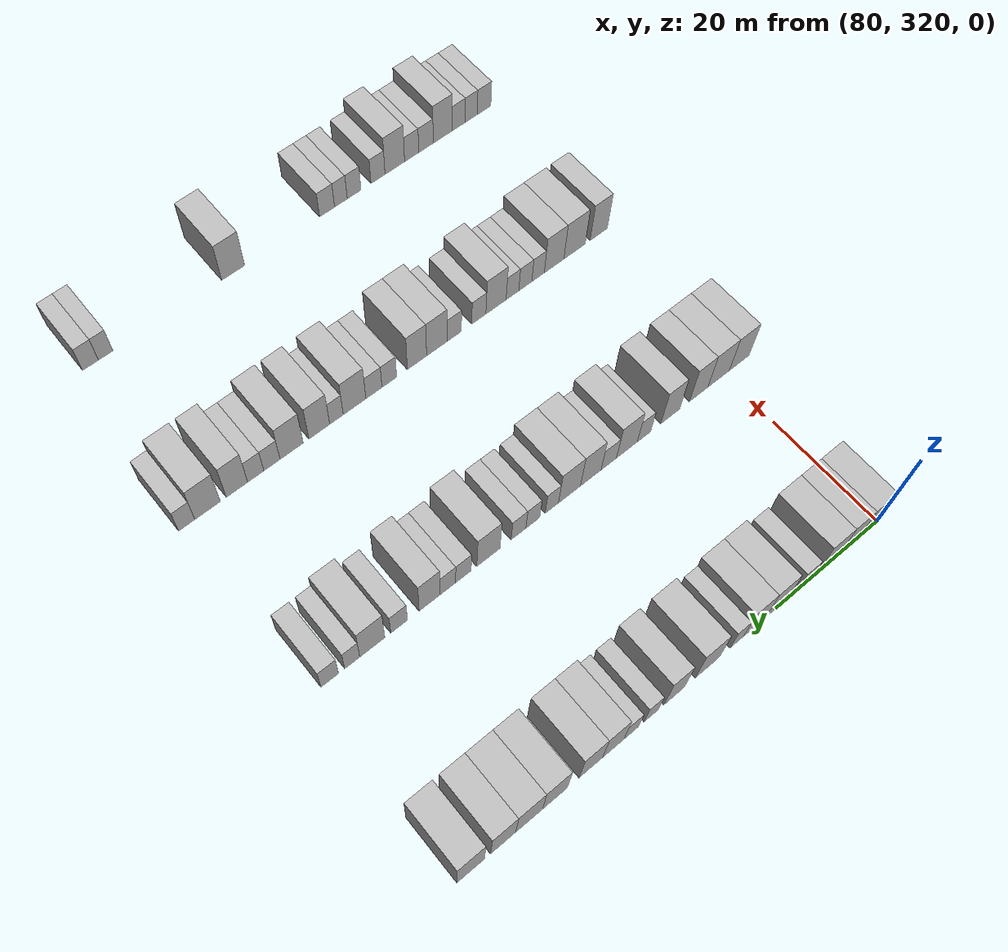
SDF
<sdf version="1.6">
 <world name="default">
  <model name="building_662">
   <static>1</static>
   <pose>85.0000 321.6373 0 0.000000 0.000000 0.000000</pose>
   <link name="link">
    <pose>0 0 4.50 0 0 0</pose>
    <collision name="collision"><geometry><box><size>10.0000 4.1727 9.0000</size></box></geometry></collision>
    <visual name="visual">
     <cast_shadows>0</cast_shadows>
     <geometry><box><size>10.0000 4.1727 9.0000</size></box></geometry>
     <material>
      <script>
       <uri>model://HANNAS_wall/materials/scripts</uri>
       <uri>model://HANNAS_wall/materials/textures</uri>
       <name>vrc/HANNAS_wall</name>
      </script>
     </material>
    </visual>
   </link>
  </model>
  <model name="building_663">
   <static>1</static>
   <pose>85.0000 325.6740 0 0.000000 0.000000 0.000000</pose>
   <link name="link">
    <pose>0 0 4.50 0 0 0</pose>
    <collision name="collision"><geometry><box><size>10.0000 3.9007 9.0000</size></box></geometry></collision>
    <visual name="visual">
     <cast_shadows>0</cast_shadows>
     <geometry><box><size>10.0000 3.9007 9.0000</size></box></geometry>
     <material>
      <script>
       <uri>model://HANNAS_wall/materials/scripts</uri>
       <uri>model://HANNAS_wall/materials/textures</uri>
       <name>vrc/HANNAS_wall</name>
      </script>
     </material>
    </visual>
   </link>
  </model>
  <model name="building_664">
   <static>1</static>
   <pose>85.0000 329.7854 0 0.000000 0.000000 0.000000</pose>
   <link name="link">
    <pose>0 0 4.50 0 0 0</pose>
    <collision name="collision"><geometry><box><size>10.0000 4.3222 9.0000</size></box></geometry></collision>
    <visual name="visual">
     <cast_shadows>0</cast_shadows>
     <geometry><box><size>10.0000 4.3222 9.0000</size></box></geometry>
     <material>
      <script>
       <uri>model://HANNAS_wall/materials/scripts</uri>
       <uri>model://HANNAS_wall/materials/textures</uri>
       <name>vrc/HANNAS_wall</name>
      </script>
     </material>
    </visual>
   </link>
  </model>
  <model name="building_665">
   <static>1</static>
   <pose>85.0000 334.3871 0 0.000000 0.000000 0.000000</pose>
   <link name="link">
    <pose>0 0 3.00 0 0 0</pose>
    <collision name="collision"><geometry><box><size>10.0000 2.8812 6.0000</size></box></geometry></collision>
    <visual name="visual">
     <cast_shadows>0</cast_shadows>
     <geometry><box><size>10.0000 2.8812 6.0000</size></box></geometry>
     <material>
      <script>
       <uri>model://HANNAS_wall/materials/scripts</uri>
       <uri>model://HANNAS_wall/materials/textures</uri>
       <name>vrc/HANNAS_wall</name>
      </script>
     </material>
    </visual>
   </link>
  </model>
  <model name="building_666">
   <static>1</static>
   <pose>85.0000 339.9158 0 0.000000 0.000000 0.000000</pose>
   <link name="link">
    <pose>0 0 4.50 0 0 0</pose>
    <collision name="collision"><geometry><box><size>10.0000 4.1763 9.0000</size></box></geometry></collision>
    <visual name="visual">
     <cast_shadows>0</cast_shadows>
     <geometry><box><size>10.0000 4.1763 9.0000</size></box></geometry>
     <material>
      <script>
       <uri>model://HANNAS_wall/materials/scripts</uri>
       <uri>model://HANNAS_wall/materials/textures</uri>
       <name>vrc/HANNAS_wall</name>
      </script>
     </material>
    </visual>
   </link>
  </model>
  <model name="building_667">
   <static>1</static>
   <pose>85.0000 344.0803 0 0.000000 0.000000 0.000000</pose>
   <link name="link">
    <pose>0 0 4.50 0 0 0</pose>
    <collision name="collision"><geometry><box><size>10.0000 4.1527 9.0000</size></box></geometry></collision>
    <visual name="visual">
     <cast_shadows>0</cast_shadows>
     <geometry><box><size>10.0000 4.1527 9.0000</size></box></geometry>
     <material>
      <script>
       <uri>model://HANNAS_wall/materials/scripts</uri>
       <uri>model://HANNAS_wall/materials/textures</uri>
       <name>vrc/HANNAS_wall</name>
      </script>
     </material>
    </visual>
   </link>
  </model>
  <model name="building_668">
   <static>1</static>
   <pose>85.0000 347.3852 0 0.000000 0.000000 0.000000</pose>
   <link name="link">
    <pose>0 0 3.00 0 0 0</pose>
    <collision name="collision"><geometry><box><size>10.0000 2.4570 6.0000</size></box></geometry></collision>
    <visual name="visual">
     <cast_shadows>0</cast_shadows>
     <geometry><box><size>10.0000 2.4570 6.0000</size></box></geometry>
     <material>
      <script>
       <uri>model://HANNAS_wall/materials/scripts</uri>
       <uri>model://HANNAS_wall/materials/textures</uri>
       <name>vrc/HANNAS_wall</name>
      </script>
     </material>
    </visual>
   </link>
  </model>
  <model name="building_669">
   <static>1</static>
   <pose>85.0000 352.8113 0 0.000000 0.000000 0.000000</pose>
   <link name="link">
    <pose>0 0 4.50 0 0 0</pose>
    <collision name="collision"><geometry><box><size>10.0000 4.3953 9.0000</size></box></geometry></collision>
    <visual name="visual">
     <cast_shadows>0</cast_shadows>
     <geometry><box><size>10.0000 4.3953 9.0000</size></box></geometry>
     <material>
      <script>
       <uri>model://HANNAS_wall/materials/scripts</uri>
       <uri>model://HANNAS_wall/materials/textures</uri>
       <name>vrc/HANNAS_wall</name>
      </script>
     </material>
    </visual>
   </link>
  </model>
  <model name="building_670">
   <static>1</static>
   <pose>85.0000 358.8216 0 0.000000 0.000000 0.000000</pose>
   <link name="link">
    <pose>0 0 4.50 0 0 0</pose>
    <collision name="collision"><geometry><box><size>10.0000 3.6254 9.0000</size></box></geometry></collision>
    <visual name="visual">
     <cast_shadows>0</cast_shadows>
     <geometry><box><size>10.0000 3.6254 9.0000</size></box></geometry>
     <material>
      <script>
       <uri>model://HANNAS_wall/materials/scripts</uri>
       <uri>model://HANNAS_wall/materials/textures</uri>
       <name>vrc/HANNAS_wall</name>
      </script>
     </material>
    </visual>
   </link>
  </model>
  <model name="building_671">
   <static>1</static>
   <pose>85.0000 362.8850 0 0.000000 0.000000 0.000000</pose>
   <link name="link">
    <pose>0 0 3.00 0 0 0</pose>
    <collision name="collision"><geometry><box><size>10.0000 2.5013 6.0000</size></box></geometry></collision>
    <visual name="visual">
     <cast_shadows>0</cast_shadows>
     <geometry><box><size>10.0000 2.5013 6.0000</size></box></geometry>
     <material>
      <script>
       <uri>model://HANNAS_wall/materials/scripts</uri>
       <uri>model://HANNAS_wall/materials/textures</uri>
       <name>vrc/HANNAS_wall</name>
      </script>
     </material>
    </visual>
   </link>
  </model>
  <model name="building_672">
   <static>1</static>
   <pose>85.0000 366.4211 0 0.000000 0.000000 0.000000</pose>
   <link name="link">
    <pose>0 0 3.00 0 0 0</pose>
    <collision name="collision"><geometry><box><size>10.0000 2.5709 6.0000</size></box></geometry></collision>
    <visual name="visual">
     <cast_shadows>0</cast_shadows>
     <geometry><box><size>10.0000 2.5709 6.0000</size></box></geometry>
     <material>
      <script>
       <uri>model://HANNAS_wall/materials/scripts</uri>
       <uri>model://HANNAS_wall/materials/textures</uri>
       <name>vrc/HANNAS_wall</name>
      </script>
     </material>
    </visual>
   </link>
  </model>
  <model name="building_673">
   <static>1</static>
   <pose>85.0000 369.5609 0 0.000000 0.000000 0.000000</pose>
   <link name="link">
    <pose>0 0 4.50 0 0 0</pose>
    <collision name="collision"><geometry><box><size>10.0000 3.7085 9.0000</size></box></geometry></collision>
    <visual name="visual">
     <cast_shadows>0</cast_shadows>
     <geometry><box><size>10.0000 3.7085 9.0000</size></box></geometry>
     <material>
      <script>
       <uri>model://HANNAS_wall/materials/scripts</uri>
       <uri>model://HANNAS_wall/materials/textures</uri>
       <name>vrc/HANNAS_wall</name>
      </script>
     </material>
    </visual>
   </link>
  </model>
  <model name="building_674">
   <static>1</static>
   <pose>85.0000 373.3936 0 0.000000 0.000000 0.000000</pose>
   <link name="link">
    <pose>0 0 4.50 0 0 0</pose>
    <collision name="collision"><geometry><box><size>10.0000 3.9568 9.0000</size></box></geometry></collision>
    <visual name="visual">
     <cast_shadows>0</cast_shadows>
     <geometry><box><size>10.0000 3.9568 9.0000</size></box></geometry>
     <material>
      <script>
       <uri>model://HANNAS_wall/materials/scripts</uri>
       <uri>model://HANNAS_wall/materials/textures</uri>
       <name>vrc/HANNAS_wall</name>
      </script>
     </material>
    </visual>
   </link>
  </model>
  <model name="building_675">
   <static>1</static>
   <pose>85.0000 379.4486 0 0.000000 0.000000 0.000000</pose>
   <link name="link">
    <pose>0 0 4.50 0 0 0</pose>
    <collision name="collision"><geometry><box><size>10.0000 4.1533 9.0000</size></box></geometry></collision>
    <visual name="visual">
     <cast_shadows>0</cast_shadows>
     <geometry><box><size>10.0000 4.1533 9.0000</size></box></geometry>
     <material>
      <script>
       <uri>model://HANNAS_wall/materials/scripts</uri>
       <uri>model://HANNAS_wall/materials/textures</uri>
       <name>vrc/HANNAS_wall</name>
      </script>
     </material>
    </visual>
   </link>
  </model>
  <model name="building_676">
   <static>1</static>
   <pose>85.0000 383.7283 0 0.000000 0.000000 0.000000</pose>
   <link name="link">
    <pose>0 0 4.50 0 0 0</pose>
    <collision name="collision"><geometry><box><size>10.0000 4.4060 9.0000</size></box></geometry></collision>
    <visual name="visual">
     <cast_shadows>0</cast_shadows>
     <geometry><box><size>10.0000 4.4060 9.0000</size></box></geometry>
     <material>
      <script>
       <uri>model://HANNAS_wall/materials/scripts</uri>
       <uri>model://HANNAS_wall/materials/textures</uri>
       <name>vrc/HANNAS_wall</name>
      </script>
     </material>
    </visual>
   </link>
  </model>
  <model name="building_677">
   <static>1</static>
   <pose>85.0000 387.9647 0 0.000000 0.000000 0.000000</pose>
   <link name="link">
    <pose>0 0 4.50 0 0 0</pose>
    <collision name="collision"><geometry><box><size>10.0000 4.0669 9.0000</size></box></geometry></collision>
    <visual name="visual">
     <cast_shadows>0</cast_shadows>
     <geometry><box><size>10.0000 4.0669 9.0000</size></box></geometry>
     <material>
      <script>
       <uri>model://HANNAS_wall/materials/scripts</uri>
       <uri>model://HANNAS_wall/materials/textures</uri>
       <name>vrc/HANNAS_wall</name>
      </script>
     </material>
    </visual>
   </link>
  </model>
  <model name="building_678">
   <static>1</static>
   <pose>85.0000 393.1819 0 0.000000 0.000000 0.000000</pose>
   <link name="link">
    <pose>0 0 4.50 0 0 0</pose>
    <collision name="collision"><geometry><box><size>10.0000 4.3675 9.0000</size></box></geometry></collision>
    <visual name="visual">
     <cast_shadows>0</cast_shadows>
     <geometry><box><size>10.0000 4.3675 9.0000</size></box></geometry>
     <material>
      <script>
       <uri>model://HANNAS_wall/materials/scripts</uri>
       <uri>model://HANNAS_wall/materials/textures</uri>
       <name>vrc/HANNAS_wall</name>
      </script>
     </material>
    </visual>
   </link>
  </model>
  <model name="building_882">
   <static>1</static>
   <pose>115.0000 317.0295 0 0.000000 0.000000 0.000000</pose>
   <link name="link">
    <pose>0 0 4.50 0 0 0</pose>
    <collision name="collision"><geometry><box><size>10.0000 4.0703 9.0000</size></box></geometry></collision>
    <visual name="visual">
     <cast_shadows>0</cast_shadows>
     <geometry><box><size>10.0000 4.0703 9.0000</size></box></geometry>
     <material>
      <script>
       <uri>model://HANNAS_wall/materials/scripts</uri>
       <uri>model://HANNAS_wall/materials/textures</uri>
       <name>vrc/HANNAS_wall</name>
      </script>
     </material>
    </visual>
   </link>
  </model>
  <model name="building_883">
   <static>1</static>
   <pose>115.0000 321.2495 0 0.000000 0.000000 0.000000</pose>
   <link name="link">
    <pose>0 0 4.50 0 0 0</pose>
    <collision name="collision"><geometry><box><size>10.0000 4.3696 9.0000</size></box></geometry></collision>
    <visual name="visual">
     <cast_shadows>0</cast_shadows>
     <geometry><box><size>10.0000 4.3696 9.0000</size></box></geometry>
     <material>
      <script>
       <uri>model://HANNAS_wall/materials/scripts</uri>
       <uri>model://HANNAS_wall/materials/textures</uri>
       <name>vrc/HANNAS_wall</name>
      </script>
     </material>
    </visual>
   </link>
  </model>
  <model name="building_884">
   <static>1</static>
   <pose>115.0000 325.2721 0 0.000000 0.000000 0.000000</pose>
   <link name="link">
    <pose>0 0 4.50 0 0 0</pose>
    <collision name="collision"><geometry><box><size>10.0000 3.6757 9.0000</size></box></geometry></collision>
    <visual name="visual">
     <cast_shadows>0</cast_shadows>
     <geometry><box><size>10.0000 3.6757 9.0000</size></box></geometry>
     <material>
      <script>
       <uri>model://HANNAS_wall/materials/scripts</uri>
       <uri>model://HANNAS_wall/materials/textures</uri>
       <name>vrc/HANNAS_wall</name>
      </script>
     </material>
    </visual>
   </link>
  </model>
  <model name="building_885">
   <static>1</static>
   <pose>115.0000 330.9667 0 0.000000 0.000000 0.000000</pose>
   <link name="link">
    <pose>0 0 4.50 0 0 0</pose>
    <collision name="collision"><geometry><box><size>10.0000 3.7135 9.0000</size></box></geometry></collision>
    <visual name="visual">
     <cast_shadows>0</cast_shadows>
     <geometry><box><size>10.0000 3.7135 9.0000</size></box></geometry>
     <material>
      <script>
       <uri>model://HANNAS_wall/materials/scripts</uri>
       <uri>model://HANNAS_wall/materials/textures</uri>
       <name>vrc/HANNAS_wall</name>
      </script>
     </material>
    </visual>
   </link>
  </model>
  <model name="building_886">
   <static>1</static>
   <pose>115.0000 336.1287 0 0.000000 0.000000 0.000000</pose>
   <link name="link">
    <pose>0 0 3.00 0 0 0</pose>
    <collision name="collision"><geometry><box><size>10.0000 2.6103 6.0000</size></box></geometry></collision>
    <visual name="visual">
     <cast_shadows>0</cast_shadows>
     <geometry><box><size>10.0000 2.6103 6.0000</size></box></geometry>
     <material>
      <script>
       <uri>model://HANNAS_wall/materials/scripts</uri>
       <uri>model://HANNAS_wall/materials/textures</uri>
       <name>vrc/HANNAS_wall</name>
      </script>
     </material>
    </visual>
   </link>
  </model>
  <model name="building_887">
   <static>1</static>
   <pose>115.0000 339.4478 0 0.000000 0.000000 0.000000</pose>
   <link name="link">
    <pose>0 0 4.50 0 0 0</pose>
    <collision name="collision"><geometry><box><size>10.0000 4.0280 9.0000</size></box></geometry></collision>
    <visual name="visual">
     <cast_shadows>0</cast_shadows>
     <geometry><box><size>10.0000 4.0280 9.0000</size></box></geometry>
     <material>
      <script>
       <uri>model://HANNAS_wall/materials/scripts</uri>
       <uri>model://HANNAS_wall/materials/textures</uri>
       <name>vrc/HANNAS_wall</name>
      </script>
     </material>
    </visual>
   </link>
  </model>
  <model name="building_888">
   <static>1</static>
   <pose>115.0000 342.9312 0 0.000000 0.000000 0.000000</pose>
   <link name="link">
    <pose>0 0 3.00 0 0 0</pose>
    <collision name="collision"><geometry><box><size>10.0000 2.9386 6.0000</size></box></geometry></collision>
    <visual name="visual">
     <cast_shadows>0</cast_shadows>
     <geometry><box><size>10.0000 2.9386 6.0000</size></box></geometry>
     <material>
      <script>
       <uri>model://HANNAS_wall/materials/scripts</uri>
       <uri>model://HANNAS_wall/materials/textures</uri>
       <name>vrc/HANNAS_wall</name>
      </script>
     </material>
    </visual>
   </link>
  </model>
  <model name="building_889">
   <static>1</static>
   <pose>115.0000 346.3501 0 0.000000 0.000000 0.000000</pose>
   <link name="link">
    <pose>0 0 4.50 0 0 0</pose>
    <collision name="collision"><geometry><box><size>10.0000 3.8993 9.0000</size></box></geometry></collision>
    <visual name="visual">
     <cast_shadows>0</cast_shadows>
     <geometry><box><size>10.0000 3.8993 9.0000</size></box></geometry>
     <material>
      <script>
       <uri>model://HANNAS_wall/materials/scripts</uri>
       <uri>model://HANNAS_wall/materials/textures</uri>
       <name>vrc/HANNAS_wall</name>
      </script>
     </material>
    </visual>
   </link>
  </model>
  <model name="building_890">
   <static>1</static>
   <pose>115.0000 350.3526 0 0.000000 0.000000 0.000000</pose>
   <link name="link">
    <pose>0 0 4.50 0 0 0</pose>
    <collision name="collision"><geometry><box><size>10.0000 4.1058 9.0000</size></box></geometry></collision>
    <visual name="visual">
     <cast_shadows>0</cast_shadows>
     <geometry><box><size>10.0000 4.1058 9.0000</size></box></geometry>
     <material>
      <script>
       <uri>model://HANNAS_wall/materials/scripts</uri>
       <uri>model://HANNAS_wall/materials/textures</uri>
       <name>vrc/HANNAS_wall</name>
      </script>
     </material>
    </visual>
   </link>
  </model>
  <model name="building_891">
   <static>1</static>
   <pose>115.0000 353.6348 0 0.000000 0.000000 0.000000</pose>
   <link name="link">
    <pose>0 0 3.00 0 0 0</pose>
    <collision name="collision"><geometry><box><size>10.0000 2.4585 6.0000</size></box></geometry></collision>
    <visual name="visual">
     <cast_shadows>0</cast_shadows>
     <geometry><box><size>10.0000 2.4585 6.0000</size></box></geometry>
     <material>
      <script>
       <uri>model://HANNAS_wall/materials/scripts</uri>
       <uri>model://HANNAS_wall/materials/textures</uri>
       <name>vrc/HANNAS_wall</name>
      </script>
     </material>
    </visual>
   </link>
  </model>
  <model name="building_892">
   <static>1</static>
   <pose>115.0000 357.1347 0 0.000000 0.000000 0.000000</pose>
   <link name="link">
    <pose>0 0 3.00 0 0 0</pose>
    <collision name="collision"><geometry><box><size>10.0000 2.5413 6.0000</size></box></geometry></collision>
    <visual name="visual">
     <cast_shadows>0</cast_shadows>
     <geometry><box><size>10.0000 2.5413 6.0000</size></box></geometry>
     <material>
      <script>
       <uri>model://HANNAS_wall/materials/scripts</uri>
       <uri>model://HANNAS_wall/materials/textures</uri>
       <name>vrc/HANNAS_wall</name>
      </script>
     </material>
    </visual>
   </link>
  </model>
  <model name="building_893">
   <static>1</static>
   <pose>115.0000 359.7430 0 0.000000 0.000000 0.000000</pose>
   <link name="link">
    <pose>0 0 3.00 0 0 0</pose>
    <collision name="collision"><geometry><box><size>10.0000 2.6753 6.0000</size></box></geometry></collision>
    <visual name="visual">
     <cast_shadows>0</cast_shadows>
     <geometry><box><size>10.0000 2.6753 6.0000</size></box></geometry>
     <material>
      <script>
       <uri>model://HANNAS_wall/materials/scripts</uri>
       <uri>model://HANNAS_wall/materials/textures</uri>
       <name>vrc/HANNAS_wall</name>
      </script>
     </material>
    </visual>
   </link>
  </model>
  <model name="building_894">
   <static>1</static>
   <pose>115.0000 365.1470 0 0.000000 0.000000 0.000000</pose>
   <link name="link">
    <pose>0 0 4.50 0 0 0</pose>
    <collision name="collision"><geometry><box><size>10.0000 4.1327 9.0000</size></box></geometry></collision>
    <visual name="visual">
     <cast_shadows>0</cast_shadows>
     <geometry><box><size>10.0000 4.1327 9.0000</size></box></geometry>
     <material>
      <script>
       <uri>model://HANNAS_wall/materials/scripts</uri>
       <uri>model://HANNAS_wall/materials/textures</uri>
       <name>vrc/HANNAS_wall</name>
      </script>
     </material>
    </visual>
   </link>
  </model>
  <model name="building_895">
   <static>1</static>
   <pose>115.0000 369.5730 0 0.000000 0.000000 0.000000</pose>
   <link name="link">
    <pose>0 0 3.00 0 0 0</pose>
    <collision name="collision"><geometry><box><size>10.0000 2.7194 6.0000</size></box></geometry></collision>
    <visual name="visual">
     <cast_shadows>0</cast_shadows>
     <geometry><box><size>10.0000 2.7194 6.0000</size></box></geometry>
     <material>
      <script>
       <uri>model://HANNAS_wall/materials/scripts</uri>
       <uri>model://HANNAS_wall/materials/textures</uri>
       <name>vrc/HANNAS_wall</name>
      </script>
     </material>
    </visual>
   </link>
  </model>
  <model name="building_896">
   <static>1</static>
   <pose>115.0000 372.2862 0 0.000000 0.000000 0.000000</pose>
   <link name="link">
    <pose>0 0 3.00 0 0 0</pose>
    <collision name="collision"><geometry><box><size>10.0000 2.7069 6.0000</size></box></geometry></collision>
    <visual name="visual">
     <cast_shadows>0</cast_shadows>
     <geometry><box><size>10.0000 2.7069 6.0000</size></box></geometry>
     <material>
      <script>
       <uri>model://HANNAS_wall/materials/scripts</uri>
       <uri>model://HANNAS_wall/materials/textures</uri>
       <name>vrc/HANNAS_wall</name>
      </script>
     </material>
    </visual>
   </link>
  </model>
  <model name="building_897">
   <static>1</static>
   <pose>115.0000 375.4513 0 0.000000 0.000000 0.000000</pose>
   <link name="link">
    <pose>0 0 4.50 0 0 0</pose>
    <collision name="collision"><geometry><box><size>10.0000 3.6233 9.0000</size></box></geometry></collision>
    <visual name="visual">
     <cast_shadows>0</cast_shadows>
     <geometry><box><size>10.0000 3.6233 9.0000</size></box></geometry>
     <material>
      <script>
       <uri>model://HANNAS_wall/materials/scripts</uri>
       <uri>model://HANNAS_wall/materials/textures</uri>
       <name>vrc/HANNAS_wall</name>
      </script>
     </material>
    </visual>
   </link>
  </model>
  <model name="building_898">
   <static>1</static>
   <pose>115.0000 380.6733 0 0.000000 0.000000 0.000000</pose>
   <link name="link">
    <pose>0 0 3.00 0 0 0</pose>
    <collision name="collision"><geometry><box><size>10.0000 2.8207 6.0000</size></box></geometry></collision>
    <visual name="visual">
     <cast_shadows>0</cast_shadows>
     <geometry><box><size>10.0000 2.8207 6.0000</size></box></geometry>
     <material>
      <script>
       <uri>model://HANNAS_wall/materials/scripts</uri>
       <uri>model://HANNAS_wall/materials/textures</uri>
       <name>vrc/HANNAS_wall</name>
      </script>
     </material>
    </visual>
   </link>
  </model>
  <model name="building_899">
   <static>1</static>
   <pose>115.0000 385.1751 0 0.000000 0.000000 0.000000</pose>
   <link name="link">
    <pose>0 0 4.50 0 0 0</pose>
    <collision name="collision"><geometry><box><size>10.0000 4.1828 9.0000</size></box></geometry></collision>
    <visual name="visual">
     <cast_shadows>0</cast_shadows>
     <geometry><box><size>10.0000 4.1828 9.0000</size></box></geometry>
     <material>
      <script>
       <uri>model://HANNAS_wall/materials/scripts</uri>
       <uri>model://HANNAS_wall/materials/textures</uri>
       <name>vrc/HANNAS_wall</name>
      </script>
     </material>
    </visual>
   </link>
  </model>
  <model name="building_900">
   <static>1</static>
   <pose>115.0000 388.5111 0 0.000000 0.000000 0.000000</pose>
   <link name="link">
    <pose>0 0 3.00 0 0 0</pose>
    <collision name="collision"><geometry><box><size>10.0000 2.4893 6.0000</size></box></geometry></collision>
    <visual name="visual">
     <cast_shadows>0</cast_shadows>
     <geometry><box><size>10.0000 2.4893 6.0000</size></box></geometry>
     <material>
      <script>
       <uri>model://HANNAS_wall/materials/scripts</uri>
       <uri>model://HANNAS_wall/materials/textures</uri>
       <name>vrc/HANNAS_wall</name>
      </script>
     </material>
    </visual>
   </link>
  </model>
  <model name="building_901">
   <static>1</static>
   <pose>115.0000 392.2011 0 0.000000 0.000000 0.000000</pose>
   <link name="link">
    <pose>0 0 3.00 0 0 0</pose>
    <collision name="collision"><geometry><box><size>10.0000 2.8906 6.0000</size></box></geometry></collision>
    <visual name="visual">
     <cast_shadows>0</cast_shadows>
     <geometry><box><size>10.0000 2.8906 6.0000</size></box></geometry>
     <material>
      <script>
       <uri>model://HANNAS_wall/materials/scripts</uri>
       <uri>model://HANNAS_wall/materials/textures</uri>
       <name>vrc/HANNAS_wall</name>
      </script>
     </material>
    </visual>
   </link>
  </model>
  <model name="building_1107">
   <static>1</static>
   <pose>145.0000 317.6498 0 0.000000 0.000000 0.000000</pose>
   <link name="link">
    <pose>0 0 4.50 0 0 0</pose>
    <collision name="collision"><geometry><box><size>10.0000 3.6022 9.0000</size></box></geometry></collision>
    <visual name="visual">
     <cast_shadows>0</cast_shadows>
     <geometry><box><size>10.0000 3.6022 9.0000</size></box></geometry>
     <material>
      <script>
       <uri>model://HANNAS_wall/materials/scripts</uri>
       <uri>model://HANNAS_wall/materials/textures</uri>
       <name>vrc/HANNAS_wall</name>
      </script>
     </material>
    </visual>
   </link>
  </model>
  <model name="building_1108">
   <static>1</static>
   <pose>145.0000 322.6452 0 0.000000 0.000000 0.000000</pose>
   <link name="link">
    <pose>0 0 4.50 0 0 0</pose>
    <collision name="collision"><geometry><box><size>10.0000 4.3886 9.0000</size></box></geometry></collision>
    <visual name="visual">
     <cast_shadows>0</cast_shadows>
     <geometry><box><size>10.0000 4.3886 9.0000</size></box></geometry>
     <material>
      <script>
       <uri>model://HANNAS_wall/materials/scripts</uri>
       <uri>model://HANNAS_wall/materials/textures</uri>
       <name>vrc/HANNAS_wall</name>
      </script>
     </material>
    </visual>
   </link>
  </model>
  <model name="building_1109">
   <static>1</static>
   <pose>145.0000 326.8326 0 0.000000 0.000000 0.000000</pose>
   <link name="link">
    <pose>0 0 4.50 0 0 0</pose>
    <collision name="collision"><geometry><box><size>10.0000 3.9862 9.0000</size></box></geometry></collision>
    <visual name="visual">
     <cast_shadows>0</cast_shadows>
     <geometry><box><size>10.0000 3.9862 9.0000</size></box></geometry>
     <material>
      <script>
       <uri>model://HANNAS_wall/materials/scripts</uri>
       <uri>model://HANNAS_wall/materials/textures</uri>
       <name>vrc/HANNAS_wall</name>
      </script>
     </material>
    </visual>
   </link>
  </model>
  <model name="building_1110">
   <static>1</static>
   <pose>145.0000 330.0849 0 0.000000 0.000000 0.000000</pose>
   <link name="link">
    <pose>0 0 3.00 0 0 0</pose>
    <collision name="collision"><geometry><box><size>10.0000 2.5184 6.0000</size></box></geometry></collision>
    <visual name="visual">
     <cast_shadows>0</cast_shadows>
     <geometry><box><size>10.0000 2.5184 6.0000</size></box></geometry>
     <material>
      <script>
       <uri>model://HANNAS_wall/materials/scripts</uri>
       <uri>model://HANNAS_wall/materials/textures</uri>
       <name>vrc/HANNAS_wall</name>
      </script>
     </material>
    </visual>
   </link>
  </model>
  <model name="building_1111">
   <static>1</static>
   <pose>145.0000 332.6453 0 0.000000 0.000000 0.000000</pose>
   <link name="link">
    <pose>0 0 3.00 0 0 0</pose>
    <collision name="collision"><geometry><box><size>10.0000 2.6024 6.0000</size></box></geometry></collision>
    <visual name="visual">
     <cast_shadows>0</cast_shadows>
     <geometry><box><size>10.0000 2.6024 6.0000</size></box></geometry>
     <material>
      <script>
       <uri>model://HANNAS_wall/materials/scripts</uri>
       <uri>model://HANNAS_wall/materials/textures</uri>
       <name>vrc/HANNAS_wall</name>
      </script>
     </material>
    </visual>
   </link>
  </model>
  <model name="building_1112">
   <static>1</static>
   <pose>145.0000 335.2062 0 0.000000 0.000000 0.000000</pose>
   <link name="link">
    <pose>0 0 3.00 0 0 0</pose>
    <collision name="collision"><geometry><box><size>10.0000 2.5195 6.0000</size></box></geometry></collision>
    <visual name="visual">
     <cast_shadows>0</cast_shadows>
     <geometry><box><size>10.0000 2.5195 6.0000</size></box></geometry>
     <material>
      <script>
       <uri>model://HANNAS_wall/materials/scripts</uri>
       <uri>model://HANNAS_wall/materials/textures</uri>
       <name>vrc/HANNAS_wall</name>
      </script>
     </material>
    </visual>
   </link>
  </model>
  <model name="building_1113">
   <static>1</static>
   <pose>145.0000 338.4538 0 0.000000 0.000000 0.000000</pose>
   <link name="link">
    <pose>0 0 4.50 0 0 0</pose>
    <collision name="collision"><geometry><box><size>10.0000 3.9756 9.0000</size></box></geometry></collision>
    <visual name="visual">
     <cast_shadows>0</cast_shadows>
     <geometry><box><size>10.0000 3.9756 9.0000</size></box></geometry>
     <material>
      <script>
       <uri>model://HANNAS_wall/materials/scripts</uri>
       <uri>model://HANNAS_wall/materials/textures</uri>
       <name>vrc/HANNAS_wall</name>
      </script>
     </material>
    </visual>
   </link>
  </model>
  <model name="building_1114">
   <static>1</static>
   <pose>145.0000 341.8217 0 0.000000 0.000000 0.000000</pose>
   <link name="link">
    <pose>0 0 3.00 0 0 0</pose>
    <collision name="collision"><geometry><box><size>10.0000 2.7602 6.0000</size></box></geometry></collision>
    <visual name="visual">
     <cast_shadows>0</cast_shadows>
     <geometry><box><size>10.0000 2.7602 6.0000</size></box></geometry>
     <material>
      <script>
       <uri>model://HANNAS_wall/materials/scripts</uri>
       <uri>model://HANNAS_wall/materials/textures</uri>
       <name>vrc/HANNAS_wall</name>
      </script>
     </material>
    </visual>
   </link>
  </model>
  <model name="building_1115">
   <static>1</static>
   <pose>145.0000 346.5615 0 0.000000 0.000000 0.000000</pose>
   <link name="link">
    <pose>0 0 3.00 0 0 0</pose>
    <collision name="collision"><geometry><box><size>10.0000 2.7193 6.0000</size></box></geometry></collision>
    <visual name="visual">
     <cast_shadows>0</cast_shadows>
     <geometry><box><size>10.0000 2.7193 6.0000</size></box></geometry>
     <material>
      <script>
       <uri>model://HANNAS_wall/materials/scripts</uri>
       <uri>model://HANNAS_wall/materials/textures</uri>
       <name>vrc/HANNAS_wall</name>
      </script>
     </material>
    </visual>
   </link>
  </model>
  <model name="building_1116">
   <static>1</static>
   <pose>145.0000 349.8764 0 0.000000 0.000000 0.000000</pose>
   <link name="link">
    <pose>0 0 4.50 0 0 0</pose>
    <collision name="collision"><geometry><box><size>10.0000 3.9104 9.0000</size></box></geometry></collision>
    <visual name="visual">
     <cast_shadows>0</cast_shadows>
     <geometry><box><size>10.0000 3.9104 9.0000</size></box></geometry>
     <material>
      <script>
       <uri>model://HANNAS_wall/materials/scripts</uri>
       <uri>model://HANNAS_wall/materials/textures</uri>
       <name>vrc/HANNAS_wall</name>
      </script>
     </material>
    </visual>
   </link>
  </model>
  <model name="building_1117">
   <static>1</static>
   <pose>145.0000 353.6425 0 0.000000 0.000000 0.000000</pose>
   <link name="link">
    <pose>0 0 4.50 0 0 0</pose>
    <collision name="collision"><geometry><box><size>10.0000 3.6218 9.0000</size></box></geometry></collision>
    <visual name="visual">
     <cast_shadows>0</cast_shadows>
     <geometry><box><size>10.0000 3.6218 9.0000</size></box></geometry>
     <material>
      <script>
       <uri>model://HANNAS_wall/materials/scripts</uri>
       <uri>model://HANNAS_wall/materials/textures</uri>
       <name>vrc/HANNAS_wall</name>
      </script>
     </material>
    </visual>
   </link>
  </model>
  <model name="building_1118">
   <static>1</static>
   <pose>145.0000 358.8104 0 0.000000 0.000000 0.000000</pose>
   <link name="link">
    <pose>0 0 3.00 0 0 0</pose>
    <collision name="collision"><geometry><box><size>10.0000 2.7140 6.0000</size></box></geometry></collision>
    <visual name="visual">
     <cast_shadows>0</cast_shadows>
     <geometry><box><size>10.0000 2.7140 6.0000</size></box></geometry>
     <material>
      <script>
       <uri>model://HANNAS_wall/materials/scripts</uri>
       <uri>model://HANNAS_wall/materials/textures</uri>
       <name>vrc/HANNAS_wall</name>
      </script>
     </material>
    </visual>
   </link>
  </model>
  <model name="building_1119">
   <static>1</static>
   <pose>145.0000 361.6425 0 0.000000 0.000000 0.000000</pose>
   <link name="link">
    <pose>0 0 3.00 0 0 0</pose>
    <collision name="collision"><geometry><box><size>10.0000 2.9502 6.0000</size></box></geometry></collision>
    <visual name="visual">
     <cast_shadows>0</cast_shadows>
     <geometry><box><size>10.0000 2.9502 6.0000</size></box></geometry>
     <material>
      <script>
       <uri>model://HANNAS_wall/materials/scripts</uri>
       <uri>model://HANNAS_wall/materials/textures</uri>
       <name>vrc/HANNAS_wall</name>
      </script>
     </material>
    </visual>
   </link>
  </model>
  <model name="building_1120">
   <static>1</static>
   <pose>145.0000 365.1748 0 0.000000 0.000000 0.000000</pose>
   <link name="link">
    <pose>0 0 4.50 0 0 0</pose>
    <collision name="collision"><geometry><box><size>10.0000 4.1144 9.0000</size></box></geometry></collision>
    <visual name="visual">
     <cast_shadows>0</cast_shadows>
     <geometry><box><size>10.0000 4.1144 9.0000</size></box></geometry>
     <material>
      <script>
       <uri>model://HANNAS_wall/materials/scripts</uri>
       <uri>model://HANNAS_wall/materials/textures</uri>
       <name>vrc/HANNAS_wall</name>
      </script>
     </material>
    </visual>
   </link>
  </model>
  <model name="building_1121">
   <static>1</static>
   <pose>145.0000 368.4507 0 0.000000 0.000000 0.000000</pose>
   <link name="link">
    <pose>0 0 3.00 0 0 0</pose>
    <collision name="collision"><geometry><box><size>10.0000 2.4373 6.0000</size></box></geometry></collision>
    <visual name="visual">
     <cast_shadows>0</cast_shadows>
     <geometry><box><size>10.0000 2.4373 6.0000</size></box></geometry>
     <material>
      <script>
       <uri>model://HANNAS_wall/materials/scripts</uri>
       <uri>model://HANNAS_wall/materials/textures</uri>
       <name>vrc/HANNAS_wall</name>
      </script>
     </material>
    </visual>
   </link>
  </model>
  <model name="building_1122">
   <static>1</static>
   <pose>145.0000 371.5284 0 0.000000 0.000000 0.000000</pose>
   <link name="link">
    <pose>0 0 4.50 0 0 0</pose>
    <collision name="collision"><geometry><box><size>10.0000 3.7181 9.0000</size></box></geometry></collision>
    <visual name="visual">
     <cast_shadows>0</cast_shadows>
     <geometry><box><size>10.0000 3.7181 9.0000</size></box></geometry>
     <material>
      <script>
       <uri>model://HANNAS_wall/materials/scripts</uri>
       <uri>model://HANNAS_wall/materials/textures</uri>
       <name>vrc/HANNAS_wall</name>
      </script>
     </material>
    </visual>
   </link>
  </model>
  <model name="building_1123">
   <static>1</static>
   <pose>145.0000 376.4237 0 0.000000 0.000000 0.000000</pose>
   <link name="link">
    <pose>0 0 4.50 0 0 0</pose>
    <collision name="collision"><geometry><box><size>10.0000 4.0723 9.0000</size></box></geometry></collision>
    <visual name="visual">
     <cast_shadows>0</cast_shadows>
     <geometry><box><size>10.0000 4.0723 9.0000</size></box></geometry>
     <material>
      <script>
       <uri>model://HANNAS_wall/materials/scripts</uri>
       <uri>model://HANNAS_wall/materials/textures</uri>
       <name>vrc/HANNAS_wall</name>
      </script>
     </material>
    </visual>
   </link>
  </model>
  <model name="building_1124">
   <static>1</static>
   <pose>145.0000 379.8709 0 0.000000 0.000000 0.000000</pose>
   <link name="link">
    <pose>0 0 3.00 0 0 0</pose>
    <collision name="collision"><geometry><box><size>10.0000 2.8221 6.0000</size></box></geometry></collision>
    <visual name="visual">
     <cast_shadows>0</cast_shadows>
     <geometry><box><size>10.0000 2.8221 6.0000</size></box></geometry>
     <material>
      <script>
       <uri>model://HANNAS_wall/materials/scripts</uri>
       <uri>model://HANNAS_wall/materials/textures</uri>
       <name>vrc/HANNAS_wall</name>
      </script>
     </material>
    </visual>
   </link>
  </model>
  <model name="building_1125">
   <static>1</static>
   <pose>145.0000 382.6728 0 0.000000 0.000000 0.000000</pose>
   <link name="link">
    <pose>0 0 3.00 0 0 0</pose>
    <collision name="collision"><geometry><box><size>10.0000 2.7817 6.0000</size></box></geometry></collision>
    <visual name="visual">
     <cast_shadows>0</cast_shadows>
     <geometry><box><size>10.0000 2.7817 6.0000</size></box></geometry>
     <material>
      <script>
       <uri>model://HANNAS_wall/materials/scripts</uri>
       <uri>model://HANNAS_wall/materials/textures</uri>
       <name>vrc/HANNAS_wall</name>
      </script>
     </material>
    </visual>
   </link>
  </model>
  <model name="building_1126">
   <static>1</static>
   <pose>145.0000 385.8947 0 0.000000 0.000000 0.000000</pose>
   <link name="link">
    <pose>0 0 4.50 0 0 0</pose>
    <collision name="collision"><geometry><box><size>10.0000 3.6622 9.0000</size></box></geometry></collision>
    <visual name="visual">
     <cast_shadows>0</cast_shadows>
     <geometry><box><size>10.0000 3.6622 9.0000</size></box></geometry>
     <material>
      <script>
       <uri>model://HANNAS_wall/materials/scripts</uri>
       <uri>model://HANNAS_wall/materials/textures</uri>
       <name>vrc/HANNAS_wall</name>
      </script>
     </material>
    </visual>
   </link>
  </model>
  <model name="building_1127">
   <static>1</static>
   <pose>145.0000 390.8716 0 0.000000 0.000000 0.000000</pose>
   <link name="link">
    <pose>0 0 4.50 0 0 0</pose>
    <collision name="collision"><geometry><box><size>10.0000 4.2915 9.0000</size></box></geometry></collision>
    <visual name="visual">
     <cast_shadows>0</cast_shadows>
     <geometry><box><size>10.0000 4.2915 9.0000</size></box></geometry>
     <material>
      <script>
       <uri>model://HANNAS_wall/materials/scripts</uri>
       <uri>model://HANNAS_wall/materials/textures</uri>
       <name>vrc/HANNAS_wall</name>
      </script>
     </material>
    </visual>
   </link>
  </model>
  <model name="building_1128">
   <static>1</static>
   <pose>145.0000 394.3723 0 0.000000 0.000000 0.000000</pose>
   <link name="link">
    <pose>0 0 3.00 0 0 0</pose>
    <collision name="collision"><geometry><box><size>10.0000 2.7100 6.0000</size></box></geometry></collision>
    <visual name="visual">
     <cast_shadows>0</cast_shadows>
     <geometry><box><size>10.0000 2.7100 6.0000</size></box></geometry>
     <material>
      <script>
       <uri>model://HANNAS_wall/materials/scripts</uri>
       <uri>model://HANNAS_wall/materials/textures</uri>
       <name>vrc/HANNAS_wall</name>
      </script>
     </material>
    </visual>
   </link>
  </model>
  <model name="building_1345">
   <static>1</static>
   <pose>175.0000 315.6805 0 0.000000 0.000000 0.000000</pose>
   <link name="link">
    <pose>0 0 3.00 0 0 0</pose>
    <collision name="collision"><geometry><box><size>10.0000 2.8888 6.0000</size></box></geometry></collision>
    <visual name="visual">
     <cast_shadows>0</cast_shadows>
     <geometry><box><size>10.0000 2.8888 6.0000</size></box></geometry>
     <material>
      <script>
       <uri>model://HANNAS_wall/materials/scripts</uri>
       <uri>model://HANNAS_wall/materials/textures</uri>
       <name>vrc/HANNAS_wall</name>
      </script>
     </material>
    </visual>
   </link>
  </model>
  <model name="building_1346">
   <static>1</static>
   <pose>175.0000 318.4120 0 0.000000 0.000000 0.000000</pose>
   <link name="link">
    <pose>0 0 3.00 0 0 0</pose>
    <collision name="collision"><geometry><box><size>10.0000 2.5742 6.0000</size></box></geometry></collision>
    <visual name="visual">
     <cast_shadows>0</cast_shadows>
     <geometry><box><size>10.0000 2.5742 6.0000</size></box></geometry>
     <material>
      <script>
       <uri>model://HANNAS_wall/materials/scripts</uri>
       <uri>model://HANNAS_wall/materials/textures</uri>
       <name>vrc/HANNAS_wall</name>
      </script>
     </material>
    </visual>
   </link>
  </model>
  <model name="building_1347">
   <static>1</static>
   <pose>175.0000 321.0432 0 0.000000 0.000000 0.000000</pose>
   <link name="link">
    <pose>0 0 3.00 0 0 0</pose>
    <collision name="collision"><geometry><box><size>10.0000 2.6883 6.0000</size></box></geometry></collision>
    <visual name="visual">
     <cast_shadows>0</cast_shadows>
     <geometry><box><size>10.0000 2.6883 6.0000</size></box></geometry>
     <material>
      <script>
       <uri>model://HANNAS_wall/materials/scripts</uri>
       <uri>model://HANNAS_wall/materials/textures</uri>
       <name>vrc/HANNAS_wall</name>
      </script>
     </material>
    </visual>
   </link>
  </model>
  <model name="building_1348">
   <static>1</static>
   <pose>175.0000 324.3606 0 0.000000 0.000000 0.000000</pose>
   <link name="link">
    <pose>0 0 4.50 0 0 0</pose>
    <collision name="collision"><geometry><box><size>10.0000 3.9464 9.0000</size></box></geometry></collision>
    <visual name="visual">
     <cast_shadows>0</cast_shadows>
     <geometry><box><size>10.0000 3.9464 9.0000</size></box></geometry>
     <material>
      <script>
       <uri>model://HANNAS_wall/materials/scripts</uri>
       <uri>model://HANNAS_wall/materials/textures</uri>
       <name>vrc/HANNAS_wall</name>
      </script>
     </material>
    </visual>
   </link>
  </model>
  <model name="building_1349">
   <static>1</static>
   <pose>175.0000 327.8232 0 0.000000 0.000000 0.000000</pose>
   <link name="link">
    <pose>0 0 3.00 0 0 0</pose>
    <collision name="collision"><geometry><box><size>10.0000 2.9789 6.0000</size></box></geometry></collision>
    <visual name="visual">
     <cast_shadows>0</cast_shadows>
     <geometry><box><size>10.0000 2.9789 6.0000</size></box></geometry>
     <material>
      <script>
       <uri>model://HANNAS_wall/materials/scripts</uri>
       <uri>model://HANNAS_wall/materials/textures</uri>
       <name>vrc/HANNAS_wall</name>
      </script>
     </material>
    </visual>
   </link>
  </model>
  <model name="building_1350">
   <static>1</static>
   <pose>175.0000 330.7582 0 0.000000 0.000000 0.000000</pose>
   <link name="link">
    <pose>0 0 3.00 0 0 0</pose>
    <collision name="collision"><geometry><box><size>10.0000 2.8912 6.0000</size></box></geometry></collision>
    <visual name="visual">
     <cast_shadows>0</cast_shadows>
     <geometry><box><size>10.0000 2.8912 6.0000</size></box></geometry>
     <material>
      <script>
       <uri>model://HANNAS_wall/materials/scripts</uri>
       <uri>model://HANNAS_wall/materials/textures</uri>
       <name>vrc/HANNAS_wall</name>
      </script>
     </material>
    </visual>
   </link>
  </model>
  <model name="building_1351">
   <static>1</static>
   <pose>175.0000 334.1828 0 0.000000 0.000000 0.000000</pose>
   <link name="link">
    <pose>0 0 4.50 0 0 0</pose>
    <collision name="collision"><geometry><box><size>10.0000 3.9579 9.0000</size></box></geometry></collision>
    <visual name="visual">
     <cast_shadows>0</cast_shadows>
     <geometry><box><size>10.0000 3.9579 9.0000</size></box></geometry>
     <material>
      <script>
       <uri>model://HANNAS_wall/materials/scripts</uri>
       <uri>model://HANNAS_wall/materials/textures</uri>
       <name>vrc/HANNAS_wall</name>
      </script>
     </material>
    </visual>
   </link>
  </model>
  <model name="building_1352">
   <static>1</static>
   <pose>175.0000 337.5718 0 0.000000 0.000000 0.000000</pose>
   <link name="link">
    <pose>0 0 3.00 0 0 0</pose>
    <collision name="collision"><geometry><box><size>10.0000 2.8201 6.0000</size></box></geometry></collision>
    <visual name="visual">
     <cast_shadows>0</cast_shadows>
     <geometry><box><size>10.0000 2.8201 6.0000</size></box></geometry>
     <material>
      <script>
       <uri>model://HANNAS_wall/materials/scripts</uri>
       <uri>model://HANNAS_wall/materials/textures</uri>
       <name>vrc/HANNAS_wall</name>
      </script>
     </material>
    </visual>
   </link>
  </model>
  <model name="building_1353">
   <static>1</static>
   <pose>175.0000 342.3352 0 0.000000 0.000000 0.000000</pose>
   <link name="link">
    <pose>0 0 3.00 0 0 0</pose>
    <collision name="collision"><geometry><box><size>10.0000 2.7067 6.0000</size></box></geometry></collision>
    <visual name="visual">
     <cast_shadows>0</cast_shadows>
     <geometry><box><size>10.0000 2.7067 6.0000</size></box></geometry>
     <material>
      <script>
       <uri>model://HANNAS_wall/materials/scripts</uri>
       <uri>model://HANNAS_wall/materials/textures</uri>
       <name>vrc/HANNAS_wall</name>
      </script>
     </material>
    </visual>
   </link>
  </model>
  <model name="building_1354">
   <static>1</static>
   <pose>175.0000 344.9350 0 0.000000 0.000000 0.000000</pose>
   <link name="link">
    <pose>0 0 3.00 0 0 0</pose>
    <collision name="collision"><geometry><box><size>10.0000 2.4929 6.0000</size></box></geometry></collision>
    <visual name="visual">
     <cast_shadows>0</cast_shadows>
     <geometry><box><size>10.0000 2.4929 6.0000</size></box></geometry>
     <material>
      <script>
       <uri>model://HANNAS_wall/materials/scripts</uri>
       <uri>model://HANNAS_wall/materials/textures</uri>
       <name>vrc/HANNAS_wall</name>
      </script>
     </material>
    </visual>
   </link>
  </model>
  <model name="building_1355">
   <static>1</static>
   <pose>175.0000 347.6492 0 0.000000 0.000000 0.000000</pose>
   <link name="link">
    <pose>0 0 3.00 0 0 0</pose>
    <collision name="collision"><geometry><box><size>10.0000 2.9356 6.0000</size></box></geometry></collision>
    <visual name="visual">
     <cast_shadows>0</cast_shadows>
     <geometry><box><size>10.0000 2.9356 6.0000</size></box></geometry>
     <material>
      <script>
       <uri>model://HANNAS_wall/materials/scripts</uri>
       <uri>model://HANNAS_wall/materials/textures</uri>
       <name>vrc/HANNAS_wall</name>
      </script>
     </material>
    </visual>
   </link>
  </model>
  <model name="building_1356">
   <static>1</static>
   <pose>175.0000 365.5206 0 0.000000 0.000000 0.000000</pose>
   <link name="link">
    <pose>0 0 4.50 0 0 0</pose>
    <collision name="collision"><geometry><box><size>10.0000 4.2690 9.0000</size></box></geometry></collision>
    <visual name="visual">
     <cast_shadows>0</cast_shadows>
     <geometry><box><size>10.0000 4.2690 9.0000</size></box></geometry>
     <material>
      <script>
       <uri>model://HANNAS_wall/materials/scripts</uri>
       <uri>model://HANNAS_wall/materials/textures</uri>
       <name>vrc/HANNAS_wall</name>
      </script>
     </material>
    </visual>
   </link>
  </model>
  <model name="building_1357">
   <static>1</static>
   <pose>175.0000 388.4152 0 0.000000 0.000000 0.000000</pose>
   <link name="link">
    <pose>0 0 3.00 0 0 0</pose>
    <collision name="collision"><geometry><box><size>10.0000 2.5067 6.0000</size></box></geometry></collision>
    <visual name="visual">
     <cast_shadows>0</cast_shadows>
     <geometry><box><size>10.0000 2.5067 6.0000</size></box></geometry>
     <material>
      <script>
       <uri>model://HANNAS_wall/materials/scripts</uri>
       <uri>model://HANNAS_wall/materials/textures</uri>
       <name>vrc/HANNAS_wall</name>
      </script>
     </material>
    </visual>
   </link>
  </model>
  <model name="building_1358">
   <static>1</static>
   <pose>175.0000 391.0430 0 0.000000 0.000000 0.000000</pose>
   <link name="link">
    <pose>0 0 3.00 0 0 0</pose>
    <collision name="collision"><geometry><box><size>10.0000 2.7490 6.0000</size></box></geometry></collision>
    <visual name="visual">
     <cast_shadows>0</cast_shadows>
     <geometry><box><size>10.0000 2.7490 6.0000</size></box></geometry>
     <material>
      <script>
       <uri>model://HANNAS_wall/materials/scripts</uri>
       <uri>model://HANNAS_wall/materials/textures</uri>
       <name>vrc/HANNAS_wall</name>
      </script>
     </material>
    </visual>
   </link>
  </model>
 </world>
</sdf>
